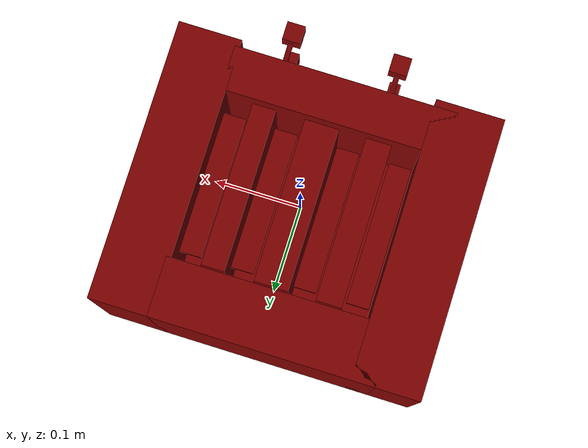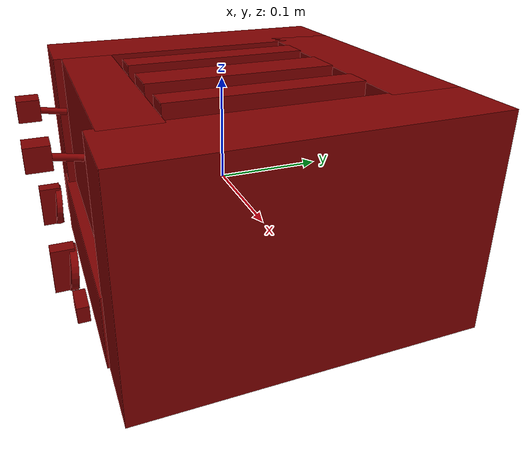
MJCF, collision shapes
<?xml version='1.0' encoding='UTF-8'?>
<mujoco model="model">
  <compiler angle="radian"/>
  <asset>
    <mesh file="visuals/Body001.obj" name="Body001_vis"/>
    <mesh file="visuals/Body002.obj" name="Body002_vis"/>
    <mesh file="visuals/Button001.obj" name="Button001_vis"/>
    <mesh file="visuals/Button002.obj" name="Button002_vis"/>
    <mesh file="visuals/Knob001.obj" name="Knob001_vis"/>
    <mesh file="visuals/Knob002.obj" name="Knob002_vis"/>
    <mesh file="visuals/Lever001.obj" name="Lever001_vis"/>
    <mesh file="visuals/Lever002.obj" name="Lever002_vis"/>
    <texture file="visuals/T_BC001.png" name="Body001_material" type="2d"/>
    <material name="Body001_material" rgba="1 1 1 1.0" texture="Body001_material" shininess="0.4472135901451111" specular="0.3103448502657381"/>
    <texture file="visuals/T_BC001.png" name="Body002_material" type="2d"/>
    <material name="Body002_material" rgba="1 1 1 1.0" texture="Body002_material" shininess="0.4472135901451111" specular="8"/>
    <texture file="visuals/T_BC001.png" name="Button001_material" type="2d"/>
    <material name="Button001_material" rgba="1 1 1 1.0" texture="Button001_material" shininess="0.4472135901451111" specular="0.3103448502657381"/>
    <texture file="visuals/T_BC001.png" name="Button002_material" type="2d"/>
    <material name="Button002_material" rgba="1 1 1 1.0" texture="Button002_material" shininess="0.4472135901451111" specular="0.3103448502657381"/>
    <texture file="visuals/T_BC001.png" name="Knob001_material" type="2d"/>
    <material name="Knob001_material" rgba="1 1 1 1.0" texture="Knob001_material" shininess="0.4472135901451111" specular="0.3103448502657381"/>
    <texture file="visuals/T_BC001.png" name="Knob002_material" type="2d"/>
    <material name="Knob002_material" rgba="1 1 1 1.0" texture="Knob002_material" shininess="0.4472135901451111" specular="0.3103448502657381"/>
    <texture file="visuals/T_BC001.png" name="Lever001_material" type="2d"/>
    <material name="Lever001_material" rgba="1 1 1 1.0" texture="Lever001_material" shininess="0.4472135901451111" specular="0.3103448502657381"/>
    <texture file="visuals/T_BC001.png" name="Lever002_material" type="2d"/>
    <material name="Lever002_material" rgba="1 1 1 1.0" texture="Lever002_material" shininess="0.4472135901451111" specular="0.3103448502657381"/>
  </asset>
  <default>
    <default class="visual">
      <geom conaffinity="0" contype="0" group="1" type="mesh"/>
    </default>
    <default class="collision">
      <geom group="0" rgba="0.5 0 0 0.5"/>
    </default>
    <default class="spawn">
      <geom group="0" rgba="1 1 1 0.5" contype="0" conaffinity="0"/>
      <site group="0" rgba="1 1 1 0.5"/>
    </default>
    <default class="region">
      <geom group="1" conaffinity="0" contype="0" rgba="0 1 0 0"/>
    </default>
  </default>
  <worldbody>
    <body>
      <body name="object">
        <geom mesh="Body001_vis" type="mesh" solimp="0.998 0.998 0.001" solref="0.001 1" density="100" friction="0.95 0.3 0.1" class="visual" material="Body001_material"/>
        <geom class="collision" type="box" pos="-0.1482546031475067 0.016965089365839958 0.0018764408305287361" size="0.038420096039772034 0.15769177675247192 0.10269986838102341" quat="1.0 0.0 0.0 0.0"/>
        <geom class="collision" type="box" pos="0.1456676721572876 0.016965089365839958 0.0018764389678835869" size="0.03576819598674774 0.15769177675247192 0.10269986838102341" quat="1.0 0.0 0.0 0.0"/>
        <geom class="collision" type="box" pos="0.06440521031618118 0.014274893328547478 0.003010571002960205" size="0.01301924791187048 0.09133340418338776 0.10383400321006775" quat="1.0 0.0 0.0 0.0"/>
        <geom class="collision" type="box" pos="-0.00018026563338935375 0.014274893328547478 0.0030105686746537685" size="0.018959015607833862 0.09133340418338776 0.10383400321006775" quat="1.0 0.0 0.0 0.0"/>
        <geom class="collision" type="box" pos="-0.06403946876525879 0.014274893328547478 0.003010571002960205" size="0.014267479069530964 0.09133340418338776 0.10383400321006775" quat="1.0 0.0 0.0 0.0"/>
        <geom class="collision" type="box" pos="-0.010518677532672882 0.14093542098999023 0.0018764445558190346" size="0.12598811089992523 0.0337214432656765 0.10269986838102341" quat="1.0 0.0 0.0 0.0"/>
        <geom class="collision" type="box" pos="-0.010518677532672882 -0.10772392153739929 0.0018764445558190346" size="0.12598811089992523 0.025044148787856102 0.10269986838102341" quat="1.0 0.0 0.0 0.0"/>
        <geom class="collision" type="box" pos="-0.010518677532672882 -0.0022100601345300674 -0.06612826138734818" size="0.12598811089992523 0.14041154086589813 0.03469515219330788" quat="1.0 0.0 0.0 0.0"/>
        <body name="Body002">
          <geom mesh="Body002_vis" type="mesh" solimp="0.998 0.998 0.001" solref="0.001 1" density="100" friction="0.95 0.3 0.1" class="visual" material="Body002_material"/>
        </body>
        <body name="Button001">
          <joint axis="0.0 0.9961947202682495 -0.08715573698282242" pos="-0.10478411614894867 -0.1557305008172989 -0.04199861362576485" limited="true" name="Button001_joint" range="0.0 0.002" type="slide" damping="1" frictionloss="1" armature=".01" stiffness="0.5" springref="-0.5"/>
          <geom mesh="Button001_vis" type="mesh" solimp="0.998 0.998 0.001" solref="0.001 1" density="100" friction="0.95 0.3 0.1" class="visual" material="Button001_material"/>
          <geom class="collision" type="box" pos="-0.10511312633752823 -0.15583738684654236 -0.042072657495737076" size="0.01255270279943943 0.004949576687067747 0.006893578916788101" quat="1.0 0.0 0.0 0.0"/>
        </body>
        <body name="Button002">
          <joint axis="0.0 0.9961947202682495 -0.08715573698282242" pos="0.10423554480075836 -0.15572504699230194 -0.0420452319085598" limited="true" name="Button002_joint" range="0.0 0.002" type="slide" damping="1" frictionloss="1" armature=".01" stiffness="0.5" springref="-0.5"/>
          <geom mesh="Button002_vis" type="mesh" solimp="0.998 0.998 0.001" solref="0.001 1" density="100" friction="0.95 0.3 0.1" class="visual" material="Button002_material"/>
          <geom class="collision" type="box" pos="0.10472682863473892 -0.15583738684654236 -0.042072657495737076" size="0.01255270279943943 0.004949576687067747 0.006893578916788101" quat="1.0 0.0 0.0 0.0"/>
        </body>
        <body name="Knob001">
          <joint axis="0.0 0.9961947202682495 -0.08715573698282242" pos="-0.06161961704492569 -0.16064514219760895 -0.032041169703006744" limited="true" name="Knob001_joint" range="0.0 5.235987755982989" type="hinge" damping="0.05" armature="0.001"/>
          <geom mesh="Knob001_vis" type="mesh" solimp="0.998 0.998 0.001" solref="0.001 1" density="100" friction="0.95 0.3 0.1" class="visual" material="Knob001_material"/>
          <geom class="collision" type="box" pos="-0.061623793095350266 -0.163234144449234 -0.0310358963906765" size="0.006472193170338869 0.00987290684133768 0.019552158191800117" quat="1.0 0.0 0.0 0.0"/>
          <geom class="collision" type="cylinder" pos="-0.06180175021290779 -0.15674912929534912 -0.032430872321128845" size="0.01974140852689743 0.0027833119966089725" quat="0.7386357188224792 0.6741048097610474 1.5062841164071406e-16 -8.694152138590664e-19"/>
        </body>
        <body name="Knob002">
          <joint axis="0.0 0.9961947202682495 -0.08715573698282242" pos="0.06107977777719498 -0.16064514219760895 -0.032041169703006744" limited="true" name="Knob002_joint" range="0.0 5.235987755982989" type="hinge" damping="0.05" armature="0.001"/>
          <geom mesh="Knob002_vis" type="mesh" solimp="0.998 0.998 0.001" solref="0.001 1" density="100" friction="0.95 0.3 0.1" class="visual" material="Knob002_material"/>
          <geom class="collision" type="box" pos="0.06107211112976074 -0.163234144449234 -0.0310358963906765" size="0.006472193170338869 0.00987290684133768 0.019552158191800117" quat="1.0 0.0 0.0 0.0"/>
          <geom class="collision" type="cylinder" pos="0.060872890055179596 -0.1564464271068573 -0.032363411039114" size="0.01974140852689743 0.003017155919224024" quat="0.7386357188224792 0.6741048097610474 1.5062841164071406e-16 -8.694152138590664e-19"/>
        </body>
        <body name="Lever001">
          <joint axis="0.0 -0.1736481785774231 -0.9848079085350037" pos="-0.06149708479642868 -0.15705041587352753 0.07098284363746643" limited="true" name="Lever001_joint" range="0.0 0.065" type="slide" damping="1" frictionloss="1" armature=".01" stiffness="1" springref="-0.8"/>
          <geom mesh="Lever001_vis" type="mesh" solimp="0.998 0.998 0.001" solref="0.001 1" density="100" friction="0.95 0.3 0.1" class="visual" material="Lever001_material"/>
          <geom class="collision" type="box" pos="-0.06161903589963913 -0.1714213788509369 0.07134950906038284" size="0.010336915962398052 0.010336915962398052 0.010336915962398052" quat="1.0 0.0 0.0 0.0" name="sideL_lever_knob"/>
          <geom class="collision" type="box" pos="-0.09388739615678787 0.01766873337328434 0.08662793785333633" size="0.012499992735683918 0.0791003555059433 0.002253378974273801" quat="1.0 0.0 0.0 0.0" name="sideL_slotL_floor"/>
          <geom class="collision" type="box" pos="-0.03491717949509621 0.01766873337328434 0.08662793785333633" size="0.012499998323619366 0.07910040020942688 0.00225338083691895" quat="1.0 0.0 0.0 0.0" name="sideL_slotR_floor"/>
          <geom class="collision" type="cylinder" pos="-0.06139659136533737 -0.15038755536079407 0.06682884693145752" size="0.0030461165588349104 0.013536262325942516" quat="0.7638219594955444 0.6454269886016846 1.4331355422223413e-16 -2.2430666616558744e-23"/>
        </body>
        <body name="Lever002">
          <joint axis="0.0 -0.1736481785774231 -0.9848079085350037" pos="0.06106232851743698 -0.15705041587352753 0.07098284363746643" limited="true" name="Lever002_joint" range="0.0 0.065" type="slide" damping="1" frictionloss="1" armature=".01" stiffness="1" springref="-0.8"/>
          <geom mesh="Lever002_vis" type="mesh" solimp="0.998 0.998 0.001" solref="0.001 1" density="100" friction="0.95 0.3 0.1" class="visual" material="Lever002_material"/>
          <geom class="collision" type="box" pos="0.06058303639292717 -0.1714213788509369 0.07134950906038284" size="0.01033690758049488 0.01033690758049488 0.01033690758049488" quat="1.0 0.0 0.0 0.0" name="sideR_lever_knob"/>
          <geom class="collision" type="box" pos="0.035156525671482086 0.01766873337328434 0.08662793785333633" size="0.01249999925494194 0.07910040020942688 0.0022533771116286516" quat="1.0 0.0 0.0 0.0" name="sideR_slotL_floor"/>
          <geom class="collision" type="box" pos="0.09329363703727722 0.01766873337328434 0.08662793785333633" size="0.012499998323619366 0.07910040020942688 0.002253377577289939" quat="1.0 0.0 0.0 0.0" name="sideR_slotR_floor"/>
          <geom class="collision" type="cylinder" pos="0.06129886209964752 -0.15038755536079407 0.06682884693145752" size="0.0030461165588349104 0.013536262325942516" quat="0.7638219594955444 0.6454269886016846 1.4331355422223413e-16 -2.2430666616558744e-23"/>
        </body>
        <geom class="region" name="reg_main" type="box" pos="3.725290298461914e-09 0.011278336867690086 -1.862645149230957e-09" size="0.18658487498760223 0.1706416755914688 0.1068083792924881"/>
      </body>
    </body>
  </worldbody>
  <actuator>
    <motor name="Button001_joint_actuator" joint="Button001_joint" gear="0.5"/>
    <motor name="Button002_joint_actuator" joint="Button002_joint" gear="0.5"/>
    <motor name="Knob001_joint_actuator" joint="Knob001_joint" gear="0.5"/>
    <motor name="Knob002_joint_actuator" joint="Knob002_joint" gear="0.5"/>
    <motor name="Lever001_joint_actuator" joint="Lever001_joint" gear="0.5"/>
    <motor name="Lever002_joint_actuator" joint="Lever002_joint" gear="0.5"/>
  </actuator>
</mujoco>
